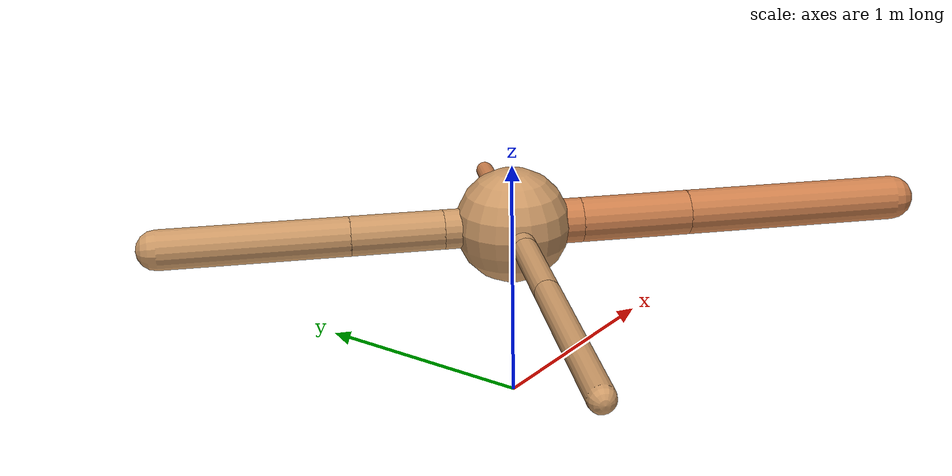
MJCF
<?xml version="1.0" ?>
<mujoco model="ant">

	<compiler angle="degree" coordinate="local" inertiafromgeom="true"/>

	<option integrator="RK4" timestep="0.01"/>

	<custom>

		<numeric data="0.0 0.0 0.55 1.0 0.0 0.0 0.0 0.0 1.0 0.0 -1.0 0.0 -1.0 0.0 1.0" name="init_qpos"/>

	</custom>

	<default>

		<joint armature="1" damping="1" limited="true"/>

		<geom conaffinity="0" condim="3" density="5.0" friction="1.5 0.1 0.1" margin="0.01" rgba="0.8 0.6 0.4 1"/>

	</default>

	<worldbody>

		<body name="torso" pos="0 0 0.75">

			<geom name="torso_geom" pos="0 0 0" size="0.23481706142646244" type="sphere"/>

			<!--joint armature="0" damping="0" limited="false" margin="0.01" name="root" pos="0 0 0" type="free"/-->

			<body name="front_left_leg" pos="0 0 0">

				<geom fromto="0 0 0 0.2 0.2 0" name="aux_1_geom" size="0.037713065403514996" type="capsule" rgba=".8 .5 .3 1"/>

				<body name="aux_1" pos="0.2 0.2 0">

					<joint axis="0 0 1" name="hip_1" pos="0.0 0.0 0.0" range="-40 40" type="hinge"/>

					<geom fromto="0 0 0 0.0965405957744109 0.0965405957744109 0" name="left_leg_geom" size="0.037713065403514996" type="capsule" rgba=".8 .5 .3 1"/>

					<body pos="0.0965405957744109 0.0965405957744109 0" name="front_left_foot">

						<joint axis="-1 1 0" name="ankle_1" pos="0.0 0.0 0.0" range="30 100" type="hinge"/>

						<geom fromto="0 0 0 0.1930811915488218 0.1930811915488218 0" name="left_ankle_geom" size="0.037713065403514996" type="capsule" rgba=".8 .5 .3 1"/>

					</body>

				</body>

			</body>

			<body name="front_right_leg" pos="0 0 0">

				<geom fromto="0 0 0 -0.2 0.2 0" name="aux_2_geom" size="0.08067721272216809" type="capsule"/>

				<body name="aux_2" pos="-0.2 0.2 0">

					<joint axis="0 0 1" name="hip_2" pos="0.0 0.0 0.0" range="-40 40" type="hinge"/>

					<geom fromto="0 0 0 -0.26528652139592224 0.26528652139592224 0" name="right_leg_geom" size="0.08067721272216809" type="capsule"/>

					<body pos="-0.26528652139592224 0.26528652139592224 0" name="front_right_foot">

						<joint axis="1 1 0" name="ankle_2" pos="0.0 0.0 0.0" range="-100 -30" type="hinge"/>

						<geom fromto="0 0 0 -0.5305730427918445 0.5305730427918445 0" name="right_ankle_geom" size="0.08067721272216809" type="capsule"/>

					</body>

				</body>

			</body>

			<body name="left_back_leg" pos="0 0 0">

				<geom fromto="0 0 0 -0.2 -0.2 0" name="aux_3_geom" size="0.05046010040810618" type="capsule"/>

				<body name="aux_3" pos="-0.2 -0.2 0">

					<joint axis="0 0 1" name="hip_3" pos="0.0 0.0 0.0" range="-40 40" type="hinge"/>

					<geom fromto="0 0 0 -0.2973187009026477 -0.2973187009026477 0" name="back_leg_geom" size="0.05046010040810618" type="capsule"/>

					<body pos="-0.2973187009026477 -0.2973187009026477 0" name="left_back_foot">

						<joint axis="-1 1 0" name="ankle_3" pos="0.0 0.0 0.0" range="-100 -30" type="hinge"/>

						<geom fromto="0 0 0 -0.5946374018052955 -0.5946374018052955 0" name="third_ankle_geom" size="0.05046010040810618" type="capsule"/>

					</body>

				</body>

			</body>

			<body name="right_back_leg" pos="0 0 0">

				<geom fromto="0 0 0 0.2 -0.2 0" name="aux_4_geom" size="0.09178414813667632" type="capsule" rgba=".8 .5 .3 1"/>

				<body name="aux_4" pos="0.2 -0.2 0">

					<joint axis="0 0 1" name="hip_4" pos="0.0 0.0 0.0" range="-40 40" type="hinge"/>

					<geom fromto="0 0 0 0.3191810649115663 -0.3191810649115663 0" name="rightback_leg_geom" size="0.09178414813667632" type="capsule" rgba=".8 .5 .3 1"/>

					<body pos="0.3191810649115663 -0.3191810649115663 0" name="right_back_foot">

						<joint axis="1 1 0" name="ankle_4" pos="0.0 0.0 0.0" range="30 100" type="hinge"/>

						<geom fromto="0 0 0 0.6383621298231326 -0.6383621298231326 0" name="fourth_ankle_geom" size="0.09178414813667632" type="capsule" rgba=".8 .5 .3 1"/>

					</body>

				</body>

			</body>

		</body>

	</worldbody>

	<actuator>

		<motor ctrllimited="true" ctrlrange="-1.0 1.0" joint="hip_4" gear="150"/>

		<motor ctrllimited="true" ctrlrange="-1.0 1.0" joint="ankle_4" gear="150"/>

		<motor ctrllimited="true" ctrlrange="-1.0 1.0" joint="hip_1" gear="150"/>

		<motor ctrllimited="true" ctrlrange="-1.0 1.0" joint="ankle_1" gear="150"/>

		<motor ctrllimited="true" ctrlrange="-1.0 1.0" joint="hip_2" gear="150"/>

		<motor ctrllimited="true" ctrlrange="-1.0 1.0" joint="ankle_2" gear="150"/>

		<motor ctrllimited="true" ctrlrange="-1.0 1.0" joint="hip_3" gear="150"/>

		<motor ctrllimited="true" ctrlrange="-1.0 1.0" joint="ankle_3" gear="150"/>

	</actuator>

</mujoco>
